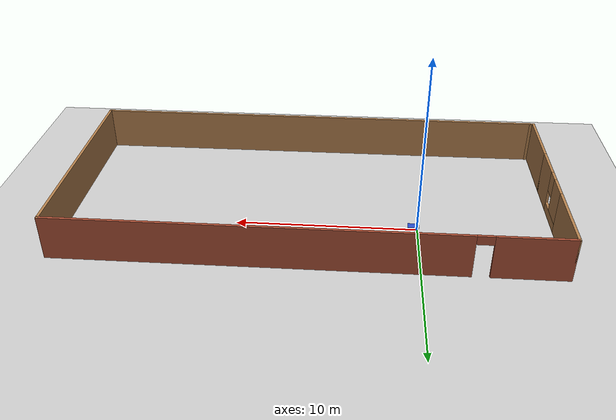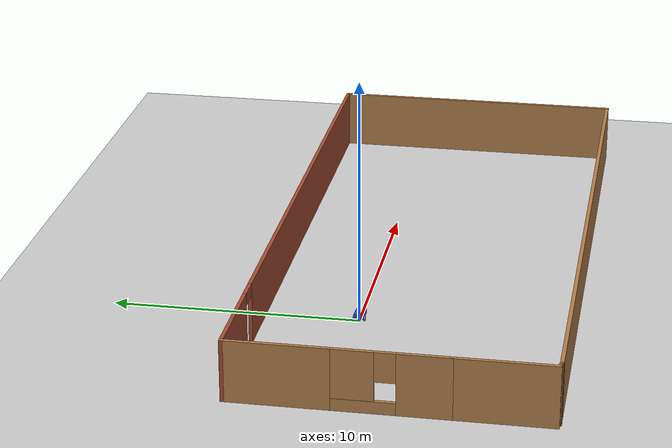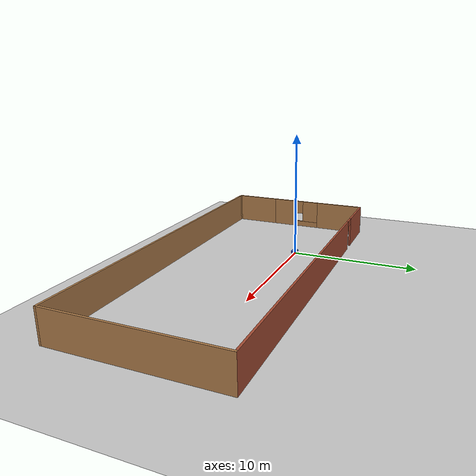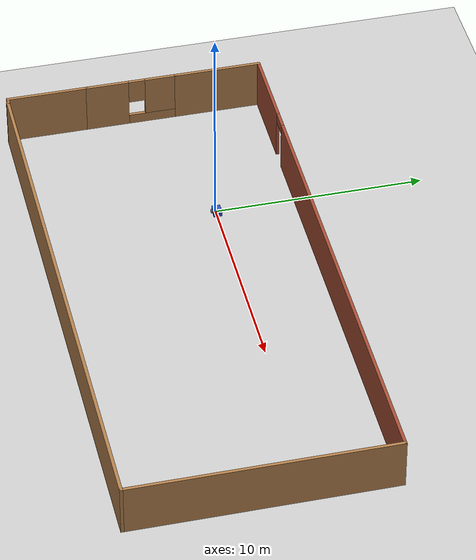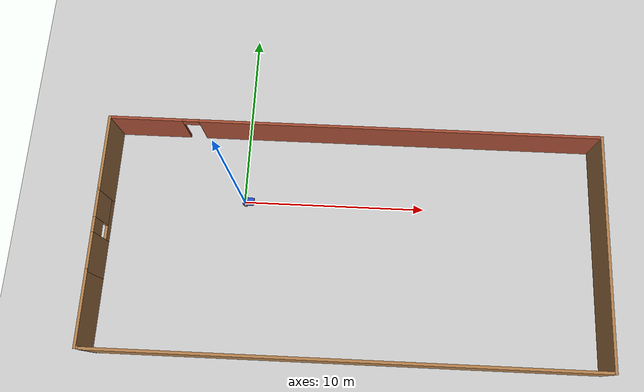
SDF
<sdf version="1.7">
 <world name="default">
  <light name="sun" type="directional">
   <pose>0 0 10 0 -0 0</pose>
   <diffuse>0.8 0.8 0.8 1</diffuse>
   <specular>0.2 0.2 0.2 1</specular>
   <attenuation>
    <range>1000</range>
    <constant>0.9</constant>
    <linear>0.01</linear>
    <quadratic>0.001</quadratic>
   </attenuation>
   <direction>-0.5 0.1 -0.9</direction>
   <spot><inner_angle>0</inner_angle><outer_angle>0</outer_angle><falloff>0</falloff></spot>
  </light>
  <model name="ground_plane">
   <static>1</static>
   <link name="link">
    <collision name="collision">
     <geometry><plane><normal>0 0 1</normal><size>100 100</size></plane></geometry>
     <surface><friction><ode><mu>100</mu><mu2>50</mu2></ode></friction></surface>
    </collision>
    <visual name="visual">
     <cast_shadows>0</cast_shadows>
     <geometry><plane><normal>0 0 1</normal><size>100 100</size></plane></geometry>
     <material>
      <script><uri>file://media/materials/scripts/gazebo.material</uri><name>Gazebo/Grey</name></script>
     </material>
    </visual>
   </link>
  </model>
  <gravity>0 0 -9.8</gravity>
  <magnetic_field>6e-06 2.3e-05 -4.2e-05</magnetic_field>
  <atmosphere type="adiabatic"/>
  <physics type="ode">
   <max_step_size>0.001</max_step_size>
   <real_time_factor>1</real_time_factor>
   <real_time_update_rate>1000</real_time_update_rate>
  </physics>
  <scene><ambient>0.4 0.4 0.4 1</ambient><background>0.7 0.7 0.7 1</background><shadows>1</shadows></scene>
  <audio><device>default</device></audio>
  <spherical_coordinates>
   <surface_model>EARTH_WGS84</surface_model>
   <latitude_deg>0</latitude_deg>
   <longitude_deg>0</longitude_deg>
   <elevation>0</elevation>
   <heading_deg>0</heading_deg>
  </spherical_coordinates>
  <model name="my_robot">
   <link name="base_footprint">
    <inertial>
     <pose>0.018182 0 0.186364 0 -0 0</pose>
     <mass>5.5</mass>
     <inertia>
      <ixx>0.677394</ixx>
      <ixy>0</ixy>
      <ixz>0.0136364</ixz>
      <iyy>0.895576</iyy>
      <iyz>0</iyz>
      <izz>0.352015</izz>
     </inertia>
    </inertial>
    <collision name="base_footprint_fixed_joint_lump__base_link_collision">
     <pose>0 0 0.2 0 -0 0</pose>
     <geometry><box><size>0.6 0.4 0.2</size></box></geometry>
    </collision>
    <collision name="base_footprint_fixed_joint_lump__castor_wheel_link_collision_1">
     <pose>0.2 0 0.05 0 -0 0</pose>
     <geometry><sphere><radius>0.05</radius></sphere></geometry>
     <surface><friction><ode><mu>0.1</mu><mu2>0.1</mu2></ode></friction></surface>
    </collision>
    <visual name="base_footprint_fixed_joint_lump__base_link_visual">
     <pose>0 0 0.2 0 -0 0</pose>
     <geometry><box><size>0.6 0.4 0.2</size></box></geometry>
     <material>
      <script><name>Gazebo/Blue</name><uri>file://media/materials/scripts/gazebo.material</uri></script>
     </material>
    </visual>
    <visual name="base_footprint_fixed_joint_lump__castor_wheel_link_visual_1">
     <pose>0.2 0 0.05 0 -0 0</pose>
     <geometry><sphere><radius>0.05</radius></sphere></geometry>
     <material>
      <script><name>Gazebo/Grey</name><uri>file://media/materials/scripts/gazebo.material</uri></script>
     </material>
    </visual>
   </link>
   <joint name="base_left_wheel_joint" type="revolute">
    <pose relative_to="base_footprint">-0.15 0.225 0.1 1.5708 -0 0</pose>
    <parent>base_footprint</parent>
    <child>left_wheel_link</child>
    <axis>
     <xyz>0 0 1</xyz>
     <limit><lower>-1e+16</lower><upper>1e+16</upper></limit>
     <dynamics><spring_reference>0</spring_reference><spring_stiffness>0</spring_stiffness></dynamics>
    </axis>
   </joint>
   <link name="left_wheel_link">
    <pose relative_to="base_left_wheel_joint">0 0 0 0 -0 0</pose>
    <inertial>
     <mass>1</mass>
     <inertia><ixx>0.0108333</ixx><ixy>0</ixy><ixz>0</ixz><iyy>0.0108333</iyy><iyz>0</iyz><izz>0.02</izz></inertia>
    </inertial>
    <collision name="left_wheel_link_collision">
     <geometry><cylinder><length>0.05</length><radius>0.1</radius></cylinder></geometry>
    </collision>
    <visual name="left_wheel_link_visual">
     <geometry><cylinder><length>0.05</length><radius>0.1</radius></cylinder></geometry>
     <material>
      <script><name>Gazebo/Grey</name><uri>file://media/materials/scripts/gazebo.material</uri></script>
     </material>
    </visual>
   </link>
   <joint name="base_right_wheel_joint" type="revolute">
    <pose relative_to="base_footprint">-0.15 -0.225 0.1 1.5708 -0 0</pose>
    <parent>base_footprint</parent>
    <child>right_wheel_link</child>
    <axis>
     <xyz>0 0 1</xyz>
     <limit><lower>-1e+16</lower><upper>1e+16</upper></limit>
     <dynamics><spring_reference>0</spring_reference><spring_stiffness>0</spring_stiffness></dynamics>
    </axis>
   </joint>
   <link name="right_wheel_link">
    <pose relative_to="base_right_wheel_joint">0 0 0 0 -0 0</pose>
    <inertial>
     <mass>1</mass>
     <inertia><ixx>0.0108333</ixx><ixy>0</ixy><ixz>0</ixz><iyy>0.0108333</iyy><iyz>0</iyz><izz>0.02</izz></inertia>
    </inertial>
    <collision name="right_wheel_link_collision">
     <geometry><cylinder><length>0.05</length><radius>0.1</radius></cylinder></geometry>
    </collision>
    <visual name="right_wheel_link_visual">
     <geometry><cylinder><length>0.05</length><radius>0.1</radius></cylinder></geometry>
     <material>
      <script><name>Gazebo/Grey</name><uri>file://media/materials/scripts/gazebo.material</uri></script>
     </material>
    </visual>
   </link>
   <static>0</static>
   <plugin name="diff_drive_controller" filename="libgazebo_ros_diff_drive.so">
    <update_rate>50</update_rate>
    <left_joint>base_left_wheel_joint</left_joint>
    <right_joint>base_right_wheel_joint</right_joint>
    <wheel_separation>0.45</wheel_separation>
    <wheel_diameter>0.2</wheel_diameter>
    <publish_odom>1</publish_odom>
    <publish_odom_tf>1</publish_odom_tf>
    <publish_wheel_tf>1</publish_wheel_tf>
    <odometry_topic>odom</odometry_topic>
    <odometry_frame>odom</odometry_frame>
    <robot_base_frame>base_footprint</robot_base_frame>
   </plugin>
   <pose>0.21738 0.012312 -2e-06 0 -9e-06 -0.039108</pose>
  </model>
  <model name="test">
   <pose>5.995 -2.34343 0 0 -0 0</pose>
   <link name="Wall_1">
    <pose>-13.425 -0.091573 0 0 -0 1.5708</pose>
    <visual name="Wall_1_Visual_0">
     <pose>-1.20658 0 1.25 0 -0 0</pose>
     <geometry><box><size>2.08685 0.15 2.5</size></box></geometry>
     <material>
      <script><uri>file://media/materials/scripts/gazebo.material</uri><name>Gazebo/Wood</name></script>
      <ambient>1 1 1 1</ambient>
     </material>
     <meta><layer>0</layer></meta>
    </visual>
    <collision name="Wall_1_Collision_0">
     <geometry><box><size>2.08685 0.15 2.5</size></box></geometry>
     <pose>-1.20658 0 1.25 0 -0 0</pose>
    </collision>
    <visual name="Wall_1_Visual_1">
     <pose>1.04342 0 0.25 0 -0 0</pose>
     <geometry><box><size>2.41315 0.15 0.5</size></box></geometry>
     <material>
      <script><uri>file://media/materials/scripts/gazebo.material</uri><name>Gazebo/Wood</name></script>
      <ambient>1 1 1 1</ambient>
     </material>
     <meta><layer>0</layer></meta>
    </visual>
    <collision name="Wall_1_Collision_1">
     <geometry><box><size>2.41315 0.15 0.5</size></box></geometry>
     <pose>1.04342 0 0.25 0 -0 0</pose>
    </collision>
    <visual name="Wall_1_Visual_2">
     <pose>1.44342 0 1.5 0 -0 0</pose>
     <geometry><box><size>1.61315 0.15 2</size></box></geometry>
     <material>
      <script><uri>file://media/materials/scripts/gazebo.material</uri><name>Gazebo/Wood</name></script>
      <ambient>1 1 1 1</ambient>
     </material>
     <meta><layer>0</layer></meta>
    </visual>
    <collision name="Wall_1_Collision_2">
     <geometry><box><size>1.61315 0.15 2</size></box></geometry>
     <pose>1.44342 0 1.5 0 -0 0</pose>
    </collision>
    <visual name="Wall_1_Visual_3">
     <pose>0.236848 0 1.9 0 -0 0</pose>
     <geometry><box><size>0.8 0.15 1.2</size></box></geometry>
     <material>
      <script><uri>file://media/materials/scripts/gazebo.material</uri><name>Gazebo/Wood</name></script>
      <ambient>1 1 1 1</ambient>
     </material>
     <meta><layer>0</layer></meta>
    </visual>
    <collision name="Wall_1_Collision_3">
     <geometry><box><size>0.8 0.15 1.2</size></box></geometry>
     <pose>0.236848 0 1.9 0 -0 0</pose>
    </collision>
   </link>
   <link name="Wall_3">
    <collision name="Wall_3_Collision">
     <geometry><box><size>4.25 0.15 2.5</size></box></geometry>
     <pose>0 0 1.25 0 -0 0</pose>
    </collision>
    <visual name="Wall_3_Visual">
     <pose>0 0 1.25 0 -0 0</pose>
     <geometry><box><size>4.25 0.15 2.5</size></box></geometry>
     <material>
      <script><uri>file://media/materials/scripts/gazebo.material</uri><name>Gazebo/Wood</name></script>
      <ambient>1 1 1 1</ambient>
     </material>
     <meta><layer>0</layer></meta>
    </visual>
    <pose>-13.425 4.13343 0 0 -0 1.5708</pose>
   </link>
   <link name="Wall_4">
    <pose>-0 6.18343 0 0 -0 0</pose>
    <visual name="Wall_4_Visual_0">
     <pose>-11.4665 0 1.25 0 -0 0</pose>
     <geometry><box><size>4.06707 0.15 2.5</size></box></geometry>
     <material>
      <script><uri>file://media/materials/scripts/gazebo.material</uri><name>Gazebo/Bricks</name></script>
      <ambient>1 1 1 1</ambient>
     </material>
     <meta><layer>0</layer></meta>
    </visual>
    <collision name="Wall_4_Collision_0">
     <geometry><box><size>4.06707 0.15 2.5</size></box></geometry>
     <pose>-11.4665 0 1.25 0 -0 0</pose>
    </collision>
    <visual name="Wall_4_Visual_1">
     <pose>2.48354 0 1.25 0 -0 0</pose>
     <geometry><box><size>22.0329 0.15 2.5</size></box></geometry>
     <material>
      <script><uri>file://media/materials/scripts/gazebo.material</uri><name>Gazebo/Bricks</name></script>
      <ambient>1 1 1 1</ambient>
     </material>
     <meta><layer>0</layer></meta>
    </visual>
    <collision name="Wall_4_Collision_1">
     <geometry><box><size>22.0329 0.15 2.5</size></box></geometry>
     <pose>2.48354 0 1.25 0 -0 0</pose>
    </collision>
    <visual name="Wall_4_Visual_2">
     <pose>-8.98293 0 2.25 0 -0 0</pose>
     <geometry><box><size>0.9 0.15 0.5</size></box></geometry>
     <material>
      <script><uri>file://media/materials/scripts/gazebo.material</uri><name>Gazebo/Bricks</name></script>
      <ambient>1 1 1 1</ambient>
     </material>
     <meta><layer>0</layer></meta>
    </visual>
    <collision name="Wall_4_Collision_2">
     <geometry><box><size>0.9 0.15 0.5</size></box></geometry>
     <pose>-8.98293 0 2.25 0 -0 0</pose>
    </collision>
   </link>
   <link name="Wall_5">
    <collision name="Wall_5_Collision">
     <geometry><box><size>12.5 0.15 2.5</size></box></geometry>
     <pose>0 0 1.25 0 -0 0</pose>
    </collision>
    <visual name="Wall_5_Visual">
     <pose>0 0 1.25 0 -0 0</pose>
     <geometry><box><size>12.5 0.15 2.5</size></box></geometry>
     <material>
      <script><uri>file://media/materials/scripts/gazebo.material</uri><name>Gazebo/Wood</name></script>
      <ambient>1 1 1 1</ambient>
     </material>
     <meta><layer>0</layer></meta>
    </visual>
    <pose>13.425 0.008427 0 0 -0 -1.5708</pose>
   </link>
   <link name="Wall_6">
    <collision name="Wall_6_Collision">
     <geometry><box><size>26.75 0.15 2.5</size></box></geometry>
     <pose>0 0 1.25 0 -0 0</pose>
    </collision>
    <visual name="Wall_6_Visual">
     <pose>0 0 1.25 0 -0 0</pose>
     <geometry><box><size>26.75 0.15 2.5</size></box></geometry>
     <material>
      <script><uri>file://media/materials/scripts/gazebo.material</uri><name>Gazebo/Wood</name></script>
      <ambient>1 1 1 1</ambient>
     </material>
     <meta><layer>0</layer></meta>
    </visual>
    <pose>0.125 -6.16657 0 0 -0 3.14159</pose>
   </link>
   <link name="Wall_7">
    <collision name="Wall_7_Collision">
     <geometry><box><size>0.25 0.15 2.5</size></box></geometry>
     <pose>0 0 1.25 0 -0 0</pose>
    </collision>
    <visual name="Wall_7_Visual">
     <pose>0 0 1.25 0 -0 0</pose>
     <geometry><box><size>0.25 0.15 2.5</size></box></geometry>
     <material>
      <script><uri>file://media/materials/scripts/gazebo.material</uri><name>Gazebo/Wood</name></script>
      <ambient>1 1 1 1</ambient>
     </material>
     <meta><layer>0</layer></meta>
    </visual>
    <pose>-13.2233 -6.15363 0 0 -0 2.87979</pose>
   </link>
   <link name="Wall_9">
    <collision name="Wall_9_Collision">
     <geometry><box><size>4 0.15 2.5</size></box></geometry>
     <pose>0 0 1.25 0 -0 0</pose>
    </collision>
    <visual name="Wall_9_Visual">
     <pose>0 0 1.25 0 -0 0</pose>
     <geometry><box><size>4 0.15 2.5</size></box></geometry>
     <material>
      <script><uri>file://media/materials/scripts/gazebo.material</uri><name>Gazebo/Wood</name></script>
      <ambient>1 1 1 1</ambient>
     </material>
     <meta><layer>0</layer></meta>
    </visual>
    <pose>-13.425 -4.19157 0 0 -0 -1.5708</pose>
   </link>
   <static>1</static>
  </model>
 </world>
</sdf>
